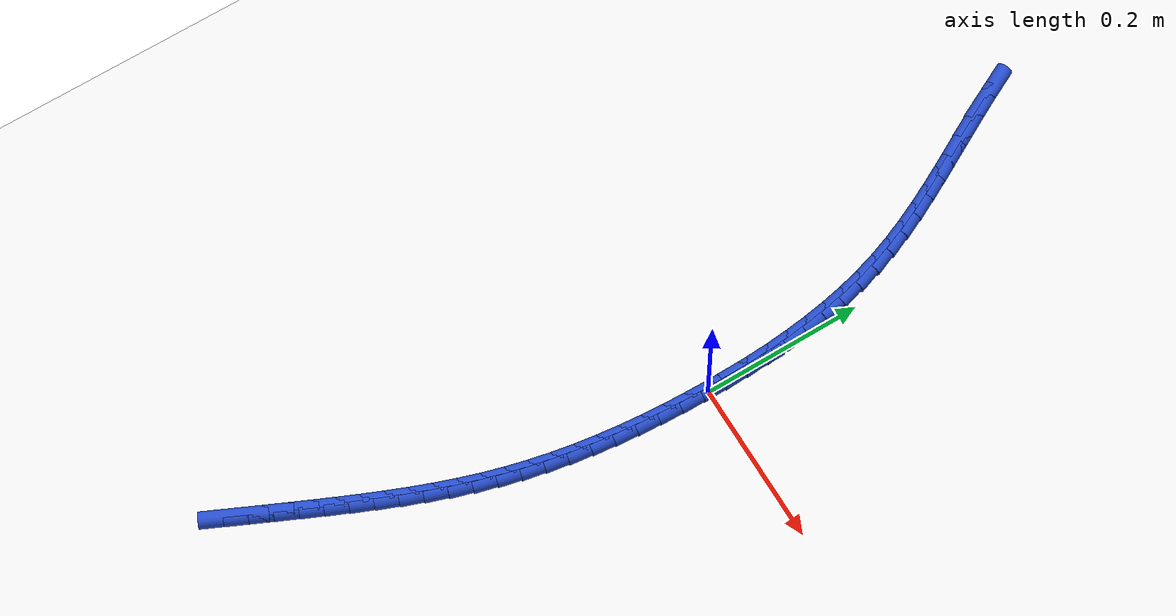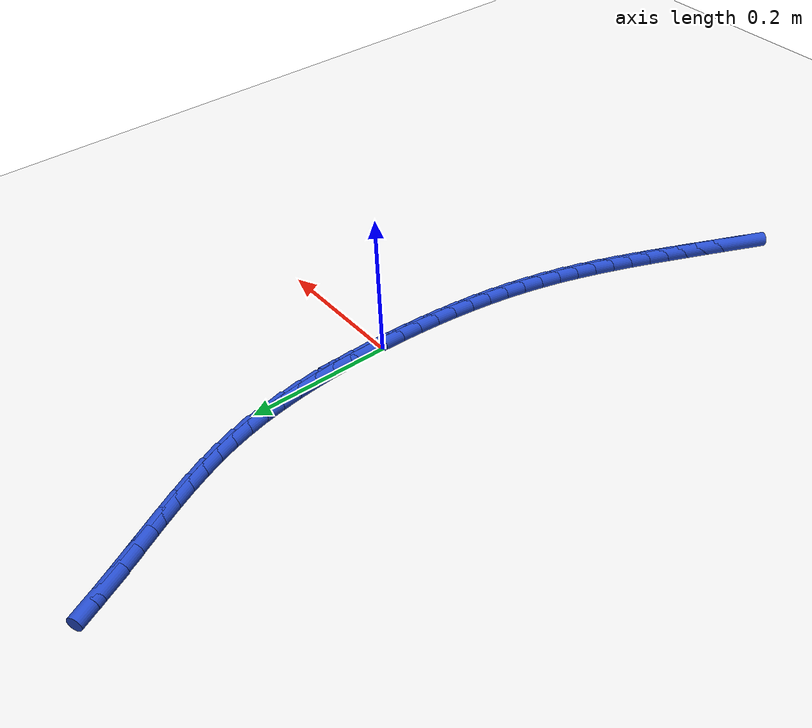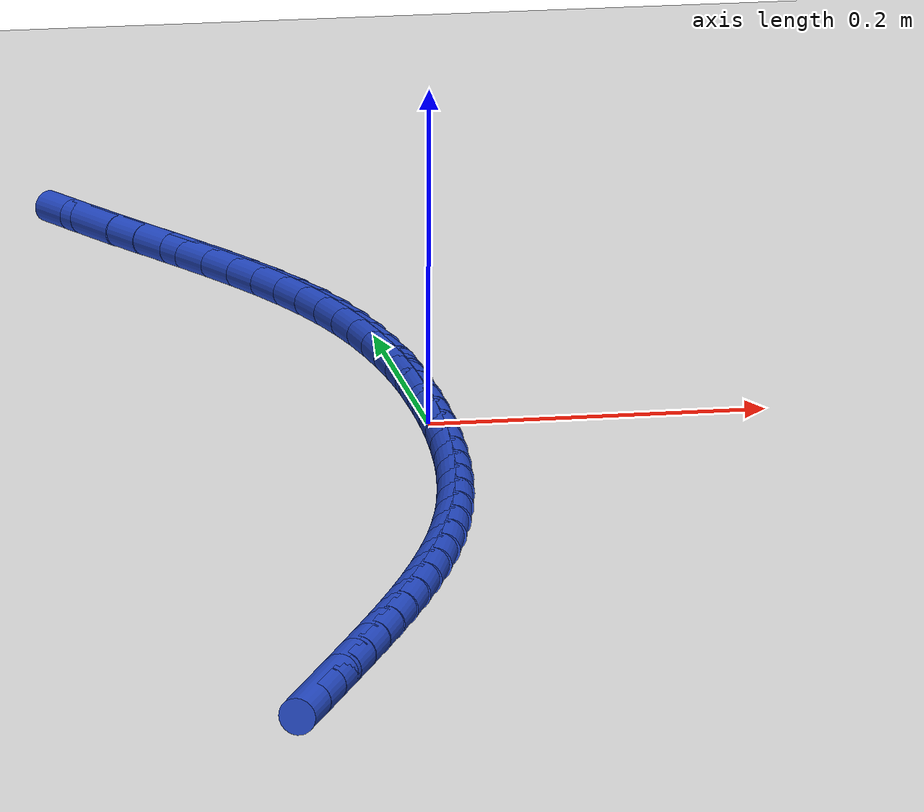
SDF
<sdf version="1.6">
 <world name="default">
  <model name="ground_plane">
   <static>1</static>
   <link name="link">
    <collision name="collision">
     <geometry><plane><normal>0 0 1</normal><size>100 100</size></plane></geometry>
     <surface><friction><ode><mu>100</mu><mu2>50</mu2></ode></friction></surface>
    </collision>
    <visual name="visual">
     <cast_shadows>0</cast_shadows>
     <geometry><plane><normal>0 0 1</normal><size>100 100</size></plane></geometry>
     <material>
      <script><uri>file://media/materials/scripts/gazebo.material</uri><name>Gazebo/WhiteGlow</name></script>
     </material>
    </visual>
   </link>
  </model>
  <model name="line">
   <link name="link_0">
    <pose>1.3444106938820255e-17 -2.7755575615628914e-17 0.01 0 1.57 1.5701263349986416</pose>
    <collision name="collision">
     <geometry><cylinder><radius>0.01</radius><length>0.08</length></cylinder></geometry>
    </collision>
    <visual name="visual">
     <material>
      <script><name>Gazebo/Blue</name><uri>file://media/materials/scripts/gazebo.material</uri></script>
     </material>
     <geometry><cylinder><radius>0.01</radius><length>0.08</length></cylinder></geometry>
    </visual>
   </link>
   <link name="link_1">
    <pose>1.9040110375387982e-05 0.028418418901303238 0.01 0 1.57 -1.5478350162516283</pose>
    <collision name="collision">
     <geometry><cylinder><radius>0.01</radius><length>0.08</length></cylinder></geometry>
    </collision>
    <visual name="visual">
     <material>
      <script><name>Gazebo/Blue</name><uri>file://media/materials/scripts/gazebo.material</uri></script>
     </material>
     <geometry><cylinder><radius>0.01</radius><length>0.08</length></cylinder></geometry>
    </visual>
   </link>
   <link name="link_2">
    <pose>-0.0006334599822844407 0.05683079617593522 0.01 0 1.57 -1.520804407910332</pose>
    <collision name="collision">
     <geometry><cylinder><radius>0.01</radius><length>0.08</length></cylinder></geometry>
    </collision>
    <visual name="visual">
     <material>
      <script><name>Gazebo/Blue</name><uri>file://media/materials/scripts/gazebo.material</uri></script>
     </material>
     <geometry><cylinder><radius>0.01</radius><length>0.08</length></cylinder></geometry>
    </visual>
   </link>
   <link name="link_3">
    <pose>-0.0020515279072395305 0.08517310466058002 0.01 0 1.57 -1.490226430365436</pose>
    <collision name="collision">
     <geometry><cylinder><radius>0.01</radius><length>0.08</length></cylinder></geometry>
    </collision>
    <visual name="visual">
     <material>
      <script><name>Gazebo/Blue</name><uri>file://media/materials/scripts/gazebo.material</uri></script>
     </material>
     <geometry><cylinder><radius>0.01</radius><length>0.08</length></cylinder></geometry>
    </visual>
   </link>
   <link name="link_4">
    <pose>-0.004329191293749942 0.11338131719192161 0.01 0 1.57 -1.455942513833774</pose>
    <collision name="collision">
     <geometry><cylinder><radius>0.01</radius><length>0.08</length></cylinder></geometry>
    </collision>
    <visual name="visual">
     <material>
      <script><name>Gazebo/Blue</name><uri>file://media/materials/scripts/gazebo.material</uri></script>
     </material>
     <geometry><cylinder><radius>0.01</radius><length>0.08</length></cylinder></geometry>
    </visual>
   </link>
   <link name="link_5">
    <pose>-0.007560477771075736 0.14139140660664407 0.01 0 1.57 -1.4177941363192812</pose>
    <collision name="collision">
     <geometry><cylinder><radius>0.01</radius><length>0.08</length></cylinder></geometry>
    </collision>
    <visual name="visual">
     <material>
      <script><name>Gazebo/Blue</name><uri>file://media/materials/scripts/gazebo.material</uri></script>
     </material>
     <geometry><cylinder><radius>0.01</radius><length>0.08</length></cylinder></geometry>
    </visual>
   </link>
   <link name="link_6">
    <pose>-0.011839414968476968 0.16913934574143136 0.01 0 1.57 -1.3756366801889799</pose>
    <collision name="collision">
     <geometry><cylinder><radius>0.01</radius><length>0.08</length></cylinder></geometry>
    </collision>
    <visual name="visual">
     <material>
      <script><name>Gazebo/Blue</name><uri>file://media/materials/scripts/gazebo.material</uri></script>
     </material>
     <geometry><cylinder><radius>0.01</radius><length>0.08</length></cylinder></geometry>
    </visual>
   </link>
   <link name="link_7">
    <pose>-0.0172600305152137 0.19656110743296767 0.01 0 1.57 -1.3293571327558817</pose>
    <collision name="collision">
     <geometry><cylinder><radius>0.01</radius><length>0.08</length></cylinder></geometry>
    </collision>
    <visual name="visual">
     <material>
      <script><name>Gazebo/Blue</name><uri>file://media/materials/scripts/gazebo.material</uri></script>
     </material>
     <geometry><cylinder><radius>0.01</radius><length>0.08</length></cylinder></geometry>
    </visual>
   </link>
   <link name="link_8">
    <pose>-0.023916352040545992 0.22359266451793683 0.01 0 1.57 -1.278896113865314</pose>
    <collision name="collision">
     <geometry><cylinder><radius>0.01</radius><length>0.08</length></cylinder></geometry>
    </collision>
    <visual name="visual">
     <material>
      <script><name>Gazebo/Blue</name><uri>file://media/materials/scripts/gazebo.material</uri></script>
     </material>
     <geometry><cylinder><radius>0.01</radius><length>0.08</length></cylinder></geometry>
    </visual>
   </link>
   <link name="link_9">
    <pose>-0.03190239817348789 0.2501699942034586 0.01 0 1.57 -1.2266557137196805</pose>
    <collision name="collision">
     <geometry><cylinder><radius>0.01</radius><length>0.08</length></cylinder></geometry>
    </collision>
    <visual name="visual">
     <material>
      <script><name>Gazebo/Blue</name><uri>file://media/materials/scripts/gazebo.material</uri></script>
     </material>
     <geometry><cylinder><radius>0.01</radius><length>0.08</length></cylinder></geometry>
    </visual>
   </link>
   <link name="link_10">
    <pose>-0.04125243555958653 0.276258088702364 0.01 0 1.57 -1.1808705689488164</pose>
    <collision name="collision">
     <geometry><cylinder><radius>0.01</radius><length>0.08</length></cylinder></geometry>
    </collision>
    <visual name="visual">
     <material>
      <script><name>Gazebo/Blue</name><uri>file://media/materials/scripts/gazebo.material</uri></script>
     </material>
     <geometry><cylinder><radius>0.01</radius><length>0.08</length></cylinder></geometry>
    </visual>
   </link>
   <link name="link_11">
    <pose>-0.051798684649481605 0.30192005197472993 0.01 0 1.57 -1.1434134782884915</pose>
    <collision name="collision">
     <geometry><cylinder><radius>0.01</radius><length>0.08</length></cylinder></geometry>
    </collision>
    <visual name="visual">
     <material>
      <script><name>Gazebo/Blue</name><uri>file://media/materials/scripts/gazebo.material</uri></script>
     </material>
     <geometry><cylinder><radius>0.01</radius><length>0.08</length></cylinder></geometry>
    </visual>
   </link>
   <link name="link_12">
    <pose>-0.06333070257502467 0.3272397048902063 0.01 0 1.57 -1.114300253677261</pose>
    <collision name="collision">
     <geometry><cylinder><radius>0.01</radius><length>0.08</length></cylinder></geometry>
    </collision>
    <visual name="visual">
     <material>
      <script><name>Gazebo/Blue</name><uri>file://media/materials/scripts/gazebo.material</uri></script>
     </material>
     <geometry><cylinder><radius>0.01</radius><length>0.08</length></cylinder></geometry>
    </visual>
   </link>
   <link name="link_13">
    <pose>-0.07563804646806734 0.3523008683184433 0.01 0 1.57 -1.0934540482754938</pose>
    <collision name="collision">
     <geometry><cylinder><radius>0.01</radius><length>0.08</length></cylinder></geometry>
    </collision>
    <visual name="visual">
     <material>
      <script><name>Gazebo/Blue</name><uri>file://media/materials/scripts/gazebo.material</uri></script>
     </material>
     <geometry><cylinder><radius>0.01</radius><length>0.08</length></cylinder></geometry>
    </visual>
   </link>
   <link name="link_14">
    <pose>-0.08851027346046116 0.37718736312909085 0.01 0 1.57 -1.0807660921270414</pose>
    <collision name="collision">
     <geometry><cylinder><radius>0.01</radius><length>0.08</length></cylinder></geometry>
    </collision>
    <visual name="visual">
     <material>
      <script><name>Gazebo/Blue</name><uri>file://media/materials/scripts/gazebo.material</uri></script>
     </material>
     <geometry><cylinder><radius>0.01</radius><length>0.08</length></cylinder></geometry>
    </visual>
   </link>
   <link name="link_15">
    <pose>-0.10173694068405774 0.40198301019179916 0.01 0 1.57 -1.0761376303746737</pose>
    <collision name="collision">
     <geometry><cylinder><radius>0.01</radius><length>0.08</length></cylinder></geometry>
    </collision>
    <visual name="visual">
     <material>
      <script><name>Gazebo/Blue</name><uri>file://media/materials/scripts/gazebo.material</uri></script>
     </material>
     <geometry><cylinder><radius>0.01</radius><length>0.08</length></cylinder></geometry>
    </visual>
   </link>
   <link name="link_16">
    <pose>-0.11510760527070872 0.42677163037621824 0.01 0 1.57 -1.0795040976213326</pose>
    <collision name="collision">
     <geometry><cylinder><radius>0.01</radius><length>0.08</length></cylinder></geometry>
    </collision>
    <visual name="visual">
     <material>
      <script><name>Gazebo/Blue</name><uri>file://media/materials/scripts/gazebo.material</uri></script>
     </material>
     <geometry><cylinder><radius>0.01</radius><length>0.08</length></cylinder></geometry>
    </visual>
   </link>
   <link name="link_17">
    <pose>-0.1284118243522656 0.45163704455199816 0.01 0 1.57 -1.0908432139291977</pose>
    <collision name="collision">
     <geometry><cylinder><radius>0.01</radius><length>0.08</length></cylinder></geometry>
    </collision>
    <visual name="visual">
     <material>
      <script><name>Gazebo/Blue</name><uri>file://media/materials/scripts/gazebo.material</uri></script>
     </material>
     <geometry><cylinder><radius>0.01</radius><length>0.08</length></cylinder></geometry>
    </visual>
   </link>
   <link name="link_18">
    <pose>-0.14143915506058005 0.47666307358878907 0.01 0 1.57 -1.1101680971503363</pose>
    <collision name="collision">
     <geometry><cylinder><radius>0.01</radius><length>0.08</length></cylinder></geometry>
    </collision>
    <visual name="visual">
     <material>
      <script><name>Gazebo/Blue</name><uri>file://media/materials/scripts/gazebo.material</uri></script>
     </material>
     <geometry><cylinder><radius>0.01</radius><length>0.08</length></cylinder></geometry>
    </visual>
   </link>
   <link name="link_230">
    <pose>-0.14910057884531183 -0.5359772641202846 0.01 0 1.57 1.130339482164704</pose>
    <collision name="collision">
     <geometry><cylinder><radius>0.01</radius><length>0.08</length></cylinder></geometry>
    </collision>
    <visual name="visual">
     <material>
      <script><name>Gazebo/Blue</name><uri>file://media/materials/scripts/gazebo.material</uri></script>
     </material>
     <geometry><cylinder><radius>0.01</radius><length>0.08</length></cylinder></geometry>
    </visual>
   </link>
   <link name="link_231">
    <pose>-0.137010553876213 -0.5103268691303761 0.01 0 1.57 1.1345219423269841</pose>
    <collision name="collision">
     <geometry><cylinder><radius>0.01</radius><length>0.08</length></cylinder></geometry>
    </collision>
    <visual name="visual">
     <material>
      <script><name>Gazebo/Blue</name><uri>file://media/materials/scripts/gazebo.material</uri></script>
     </material>
     <geometry><cylinder><radius>0.01</radius><length>0.08</length></cylinder></geometry>
    </visual>
   </link>
   <link name="link_232">
    <pose>-0.125034495964148 -0.48464024530071637 0.01 0 1.57 1.1368925552408697</pose>
    <collision name="collision">
     <geometry><cylinder><radius>0.01</radius><length>0.08</length></cylinder></geometry>
    </collision>
    <visual name="visual">
     <material>
      <script><name>Gazebo/Blue</name><uri>file://media/materials/scripts/gazebo.material</uri></script>
     </material>
     <geometry><cylinder><radius>0.01</radius><length>0.08</length></cylinder></geometry>
    </visual>
   </link>
   <link name="link_233">
    <pose>-0.11313339993707773 -0.45895559360349003 0.01 0 1.57 1.141655410501366</pose>
    <collision name="collision">
     <geometry><cylinder><radius>0.01</radius><length>0.08</length></cylinder></geometry>
    </collision>
    <visual name="visual">
     <material>
      <script><name>Gazebo/Blue</name><uri>file://media/materials/scripts/gazebo.material</uri></script>
     </material>
     <geometry><cylinder><radius>0.01</radius><length>0.08</length></cylinder></geometry>
    </visual>
   </link>
   <link name="link_234">
    <pose>-0.10137464530950456 -0.43325798423733625 0.01 0 1.57 1.1502998233150301</pose>
    <collision name="collision">
     <geometry><cylinder><radius>0.01</radius><length>0.08</length></cylinder></geometry>
    </collision>
    <visual name="visual">
     <material>
      <script><name>Gazebo/Blue</name><uri>file://media/materials/scripts/gazebo.material</uri></script>
     </material>
     <geometry><cylinder><radius>0.01</radius><length>0.08</length></cylinder></geometry>
    </visual>
   </link>
   <link name="link_235">
    <pose>-0.08986273144282154 -0.40751394896041565 0.01 0 1.57 1.162861825616657</pose>
    <collision name="collision">
     <geometry><cylinder><radius>0.01</radius><length>0.08</length></cylinder></geometry>
    </collision>
    <visual name="visual">
     <material>
      <script><name>Gazebo/Blue</name><uri>file://media/materials/scripts/gazebo.material</uri></script>
     </material>
     <geometry><cylinder><radius>0.01</radius><length>0.08</length></cylinder></geometry>
    </visual>
   </link>
   <link name="link_236">
    <pose>-0.07870219612249062 -0.3816900003410924 0.01 0 1.57 1.1793807864498622</pose>
    <collision name="collision">
     <geometry><cylinder><radius>0.01</radius><length>0.08</length></cylinder></geometry>
    </collision>
    <visual name="visual">
     <material>
      <script><name>Gazebo/Blue</name><uri>file://media/materials/scripts/gazebo.material</uri></script>
     </material>
     <geometry><cylinder><radius>0.01</radius><length>0.08</length></cylinder></geometry>
    </visual>
   </link>
   <link name="link_237">
    <pose>-0.06799757713397372 -0.35575265094773073 0.01 0 1.57 1.19989522440311</pose>
    <collision name="collision">
     <geometry><cylinder><radius>0.01</radius><length>0.08</length></cylinder></geometry>
    </collision>
    <visual name="visual">
     <material>
      <script><name>Gazebo/Blue</name><uri>file://media/materials/scripts/gazebo.material</uri></script>
     </material>
     <geometry><cylinder><radius>0.01</radius><length>0.08</length></cylinder></geometry>
    </visual>
   </link>
   <link name="link_238">
    <pose>-0.05785341226273275 -0.3296684133486946 0.01 0 1.57 1.2244350008488964</pose>
    <collision name="collision">
     <geometry><cylinder><radius>0.01</radius><length>0.08</length></cylinder></geometry>
    </collision>
    <visual name="visual">
     <material>
      <script><name>Gazebo/Blue</name><uri>file://media/materials/scripts/gazebo.material</uri></script>
     </material>
     <geometry><cylinder><radius>0.01</radius><length>0.08</length></cylinder></geometry>
    </visual>
   </link>
   <link name="link_239">
    <pose>-0.04837423929422965 -0.30340380011234824 0.01 0 1.57 1.2530113330743895</pose>
    <collision name="collision">
     <geometry><cylinder><radius>0.01</radius><length>0.08</length></cylinder></geometry>
    </collision>
    <visual name="visual">
     <material>
      <script><name>Gazebo/Blue</name><uri>file://media/materials/scripts/gazebo.material</uri></script>
     </material>
     <geometry><cylinder><radius>0.01</radius><length>0.08</length></cylinder></geometry>
    </visual>
   </link>
   <link name="link_240">
    <pose>-0.0396645960139266 -0.27692532380705664 0.01 0 1.57 1.2856047242888058</pose>
    <collision name="collision">
     <geometry><cylinder><radius>0.01</radius><length>0.08</length></cylinder></geometry>
    </collision>
    <visual name="visual">
     <material>
      <script><name>Gazebo/Blue</name><uri>file://media/materials/scripts/gazebo.material</uri></script>
     </material>
     <geometry><cylinder><radius>0.01</radius><length>0.08</length></cylinder></geometry>
    </visual>
   </link>
   <link name="link_241">
    <pose>-0.031829020207285015 -0.2501994970011824 0.01 0 1.57 1.32134725674007</pose>
    <collision name="collision">
     <geometry><cylinder><radius>0.01</radius><length>0.08</length></cylinder></geometry>
    </collision>
    <visual name="visual">
     <material>
      <script><name>Gazebo/Blue</name><uri>file://media/materials/scripts/gazebo.material</uri></script>
     </material>
     <geometry><cylinder><radius>0.01</radius><length>0.08</length></cylinder></geometry>
    </visual>
   </link>
   <link name="link_242">
    <pose>-0.024951025562162957 -0.22320104553440354 0.01 0 1.57 1.3563526764010503</pose>
    <collision name="collision">
     <geometry><cylinder><radius>0.01</radius><length>0.08</length></cylinder></geometry>
    </collision>
    <visual name="visual">
     <material>
      <script><name>Gazebo/Blue</name><uri>file://media/materials/scripts/gazebo.material</uri></script>
     </material>
     <geometry><cylinder><radius>0.01</radius><length>0.08</length></cylinder></geometry>
    </visual>
   </link>
   <link name="link_243">
    <pose>-0.019014559229098844 -0.19594359189728458 0.01 0 1.57 1.3894639220638425</pose>
    <collision name="collision">
     <geometry><cylinder><radius>0.01</radius><length>0.08</length></cylinder></geometry>
    </collision>
    <visual name="visual">
     <material>
      <script><name>Gazebo/Blue</name><uri>file://media/materials/scripts/gazebo.material</uri></script>
     </material>
     <geometry><cylinder><radius>0.01</radius><length>0.08</length></cylinder></geometry>
    </visual>
   </link>
   <link name="link_244">
    <pose>-0.013974123121642168 -0.1684522616529509 0.01 0 1.57 1.4206745324074224</pose>
    <collision name="collision">
     <geometry><cylinder><radius>0.01</radius><length>0.08</length></cylinder></geometry>
    </collision>
    <visual name="visual">
     <material>
      <script><name>Gazebo/Blue</name><uri>file://media/materials/scripts/gazebo.material</uri></script>
     </material>
     <geometry><cylinder><radius>0.01</radius><length>0.08</length></cylinder></geometry>
    </visual>
   </link>
   <link name="link_245">
    <pose>-0.009784214718102601 -0.14075218209719828 0.01 0 1.57 1.4499945070785405</pose>
    <collision name="collision">
     <geometry><cylinder><radius>0.01</radius><length>0.08</length></cylinder></geometry>
    </collision>
    <visual name="visual">
     <material>
      <script><name>Gazebo/Blue</name><uri>file://media/materials/scripts/gazebo.material</uri></script>
     </material>
     <geometry><cylinder><radius>0.01</radius><length>0.08</length></cylinder></geometry>
    </visual>
   </link>
   <link name="link_246">
    <pose>-0.006399331496789822 -0.11286848052582237 0.01 0 1.57 1.4774466419437624</pose>
    <collision name="collision">
     <geometry><cylinder><radius>0.01</radius><length>0.08</length></cylinder></geometry>
    </collision>
    <visual name="visual">
     <material>
      <script><name>Gazebo/Blue</name><uri>file://media/materials/scripts/gazebo.material</uri></script>
     </material>
     <geometry><cylinder><radius>0.01</radius><length>0.08</length></cylinder></geometry>
    </visual>
   </link>
   <link name="link_247">
    <pose>-0.0037739709360135013 -0.08482628423461891 0.01 0 1.57 1.5030632862039195</pose>
    <collision name="collision">
     <geometry><cylinder><radius>0.01</radius><length>0.08</length></cylinder></geometry>
    </collision>
    <visual name="visual">
     <material>
      <script><name>Gazebo/Blue</name><uri>file://media/materials/scripts/gazebo.material</uri></script>
     </material>
     <geometry><cylinder><radius>0.01</radius><length>0.08</length></cylinder></geometry>
    </visual>
   </link>
   <link name="link_248">
    <pose>-0.0018626305140833055 -0.05665072051938358 0.01 0 1.57 1.5268834271669984</pose>
    <collision name="collision">
     <geometry><cylinder><radius>0.01</radius><length>0.08</length></cylinder></geometry>
    </collision>
    <visual name="visual">
     <material>
      <script><name>Gazebo/Blue</name><uri>file://media/materials/scripts/gazebo.material</uri></script>
     </material>
     <geometry><cylinder><radius>0.01</radius><length>0.08</length></cylinder></geometry>
    </visual>
   </link>
   <link name="link_249">
    <pose>-0.0006198077093089146 -0.028366916675912124 0.01 0 1.57 1.5489501349470023</pose>
    <collision name="collision">
     <geometry><cylinder><radius>0.01</radius><length>0.08</length></cylinder></geometry>
    </collision>
    <visual name="visual">
     <material>
      <script><name>Gazebo/Blue</name><uri>file://media/materials/scripts/gazebo.material</uri></script>
     </material>
     <geometry><cylinder><radius>0.01</radius><length>0.08</length></cylinder></geometry>
    </visual>
   </link>
   <link name="link_250">
    <pose>8.239936510889834e-18 -2.220446049250313e-16 0.01 0 1.57 1.5693083672584538</pose>
    <collision name="collision">
     <geometry><cylinder><radius>0.01</radius><length>0.08</length></cylinder></geometry>
    </collision>
    <visual name="visual">
     <material>
      <script><name>Gazebo/Blue</name><uri>file://media/materials/scripts/gazebo.material</uri></script>
     </material>
     <geometry><cylinder><radius>0.01</radius><length>0.08</length></cylinder></geometry>
    </visual>
   </link>
   <link name="link_251">
    <pose>4.2295135533783335e-05 0.02842490221255641 0.01 0 1.57 -1.5535895411145308</pose>
    <collision name="collision">
     <geometry><cylinder><radius>0.01</radius><length>0.08</length></cylinder></geometry>
    </collision>
    <visual name="visual">
     <material>
      <script><name>Gazebo/Blue</name><uri>file://media/materials/scripts/gazebo.material</uri></script>
     </material>
     <geometry><cylinder><radius>0.01</radius><length>0.08</length></cylinder></geometry>
    </visual>
   </link>
   <link name="link_252">
    <pose>-0.00044741978101725576 0.05688266266596205 0.01 0 1.57 -1.5629308273033626</pose>
    <collision name="collision">
     <geometry><cylinder><radius>0.01</radius><length>0.08</length></cylinder></geometry>
    </collision>
    <visual name="visual">
     <material>
      <script><name>Gazebo/Blue</name><uri>file://media/materials/scripts/gazebo.material</uri></script>
     </material>
     <geometry><cylinder><radius>0.01</radius><length>0.08</length></cylinder></geometry>
    </visual>
   </link>
  </model>
 </world>
</sdf>
